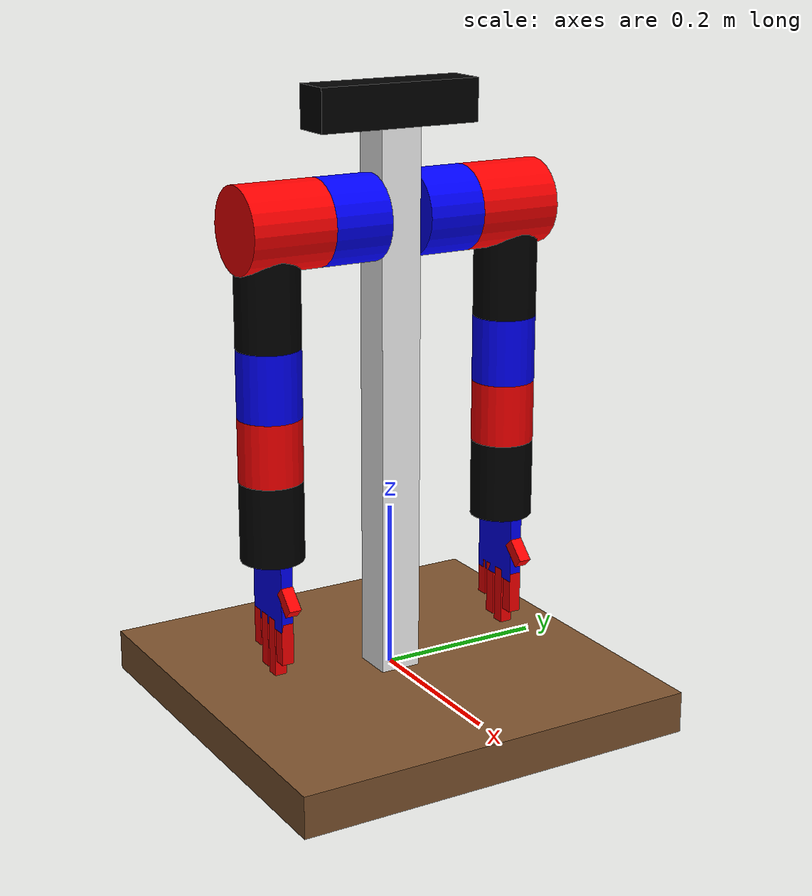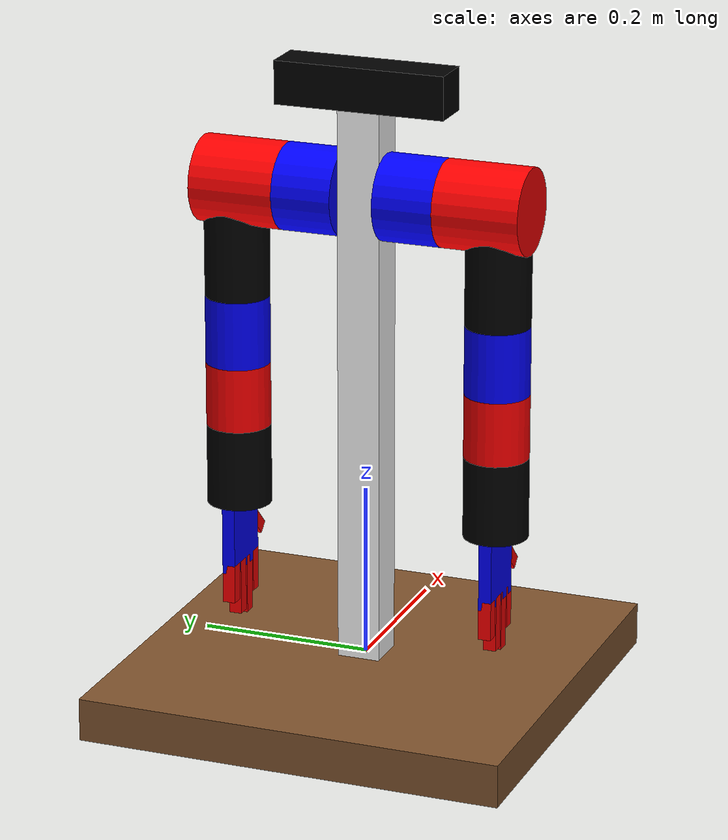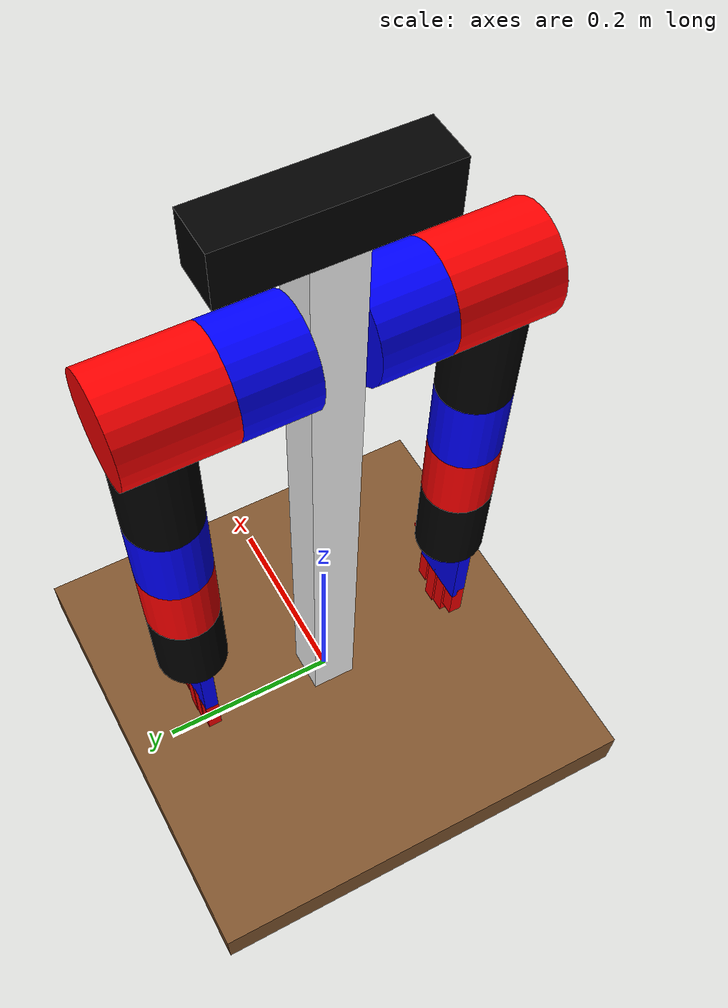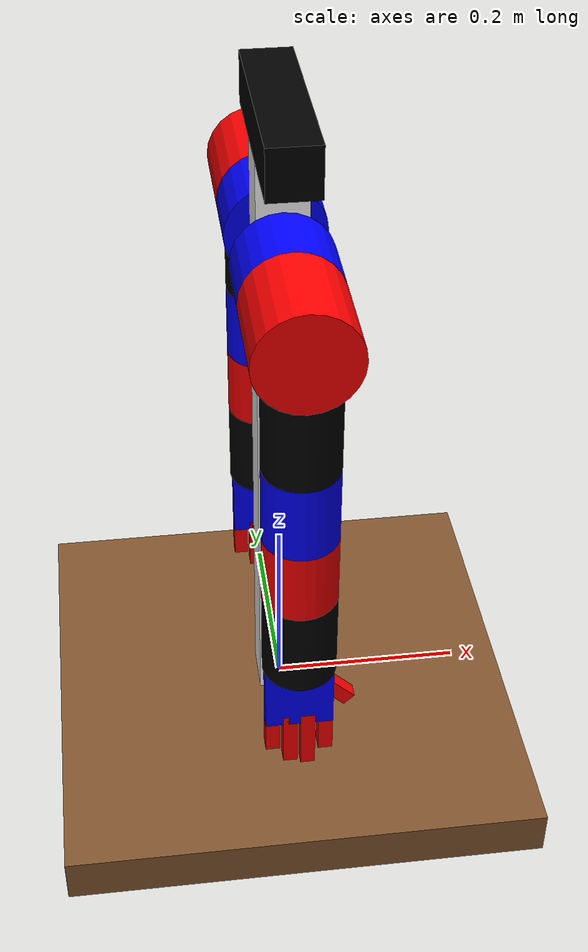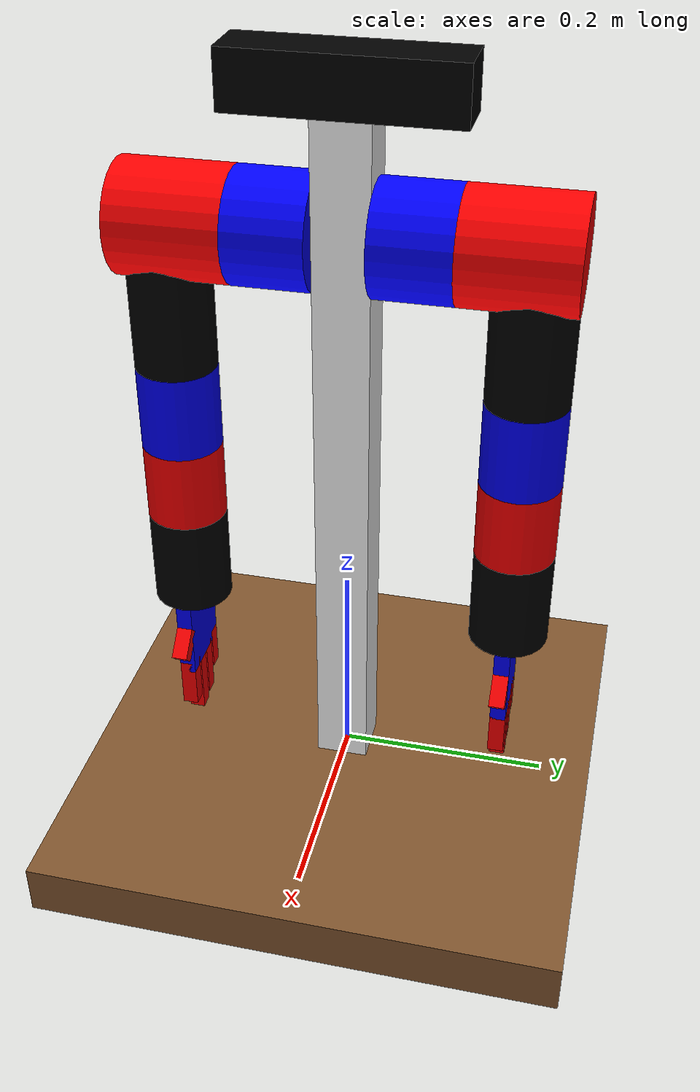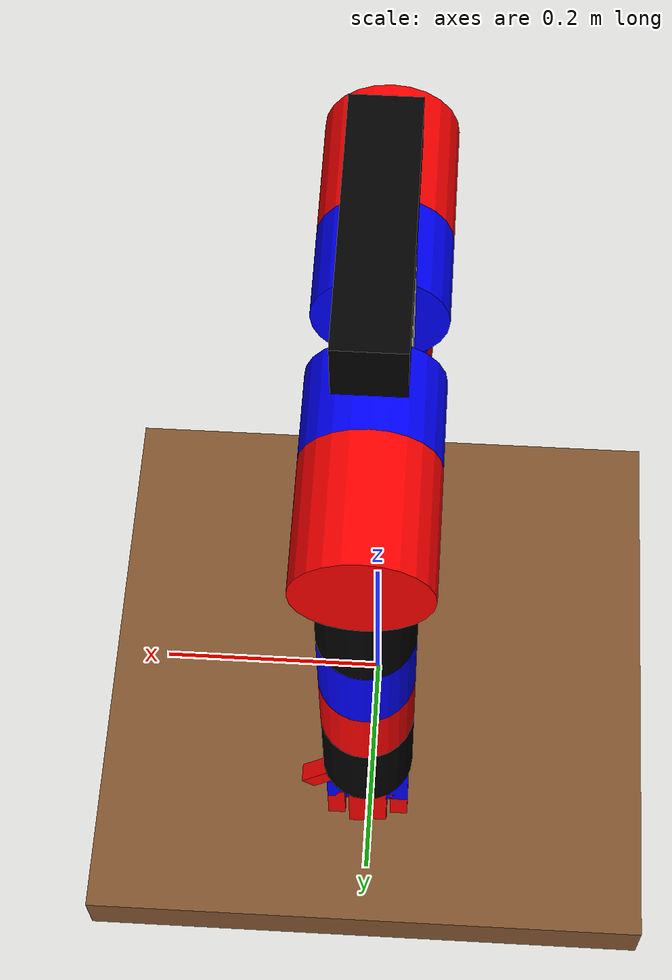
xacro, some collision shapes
<?xml version="1.0"?>
<robot name="doublearm" xmlns:xacro="http://ros.org/wiki/xacro">

    <!-- Defining the colors used in this robot -->
    <material name="Black">
        <color rgba="0 0 0 1"/>
    </material>

    <material name="White">
        <color rgba="1 1 1 1"/>
    </material>

    <material name="Blue">
        <color rgba="0 0 1 1"/>
    </material>

    <material name="Red">
        <color rgba="1 0 0 1"/>
    </material>

    <!-- Constants -->
    <xacro:property name="M_PI" value="3.14159"/>

    <!-- link1 properties -->
    <xacro:property name="link1_width" value="0.05" />
    <xacro:property name="link1_len" value="0.07" />

    <!-- link2 properties -->
    <xacro:property name="link2_width" value="0.05" />
    <xacro:property name="link2_len" value="0.1" />

    <!-- link3 properties -->
    <xacro:property name="link3_width" value="0.0375" />
    <xacro:property name="link3_len" value="0.135" />

    <!-- link4 properties -->
    <xacro:property name="link4_width" value="0.0375" />
    <xacro:property name="link4_len" value="0.08" />

    <!-- link5 properties -->
    <xacro:property name="link5_width" value="0.0375" />
    <xacro:property name="link5_len" value="0.075" />

    <!-- link6 properties -->
    <xacro:property name="link6_width" value="0.0375" />
    <xacro:property name="link6_len" value="0.095" />

    <!-- palm properties -->
    <xacro:property name="palm_len" value="0.07" />
    <xacro:property name="palm_width" value="0.015" />
    <xacro:property name="palm_height" value="0.08" />

    <!-- thumb properties -->
    <xacro:property name="hand_size" value="0.015" />
    <xacro:property name="thumb_height" value="0.03" />

    <!-- index_finger properties -->
    <xacro:property name="index_finger_height" value="0.05" />

    <!-- middle_finger properties -->
    <xacro:property name="middle_finger_height" value="0.07" />

    <!-- third_finger properties -->
    <xacro:property name="third_finger_height" value="0.065" />

    <!-- little_finger properties -->
    <xacro:property name="little_finger_height" value="0.045" />

    <!-- Inertial matrix -->
    <xacro:macro name="inertial_matrix" params="mass">
        <inertial>
            <mass value="${mass}" />
            <inertia ixx="1.0" ixy="0.0" ixz="0.0" iyy="0.5" iyz="0.0" izz="1.0" />
        </inertial>
    </xacro:macro>

    <!-- ///////////////////////////////////////   bottom_joint   ////////////////////////////////////////// -->

    <link name="bottom_link">
        <visual>
              <origin xyz=" 0 0 -0.025"  rpy="0 0 0"/>
                  <geometry>
                       <box size="0.5 0.5 0.05" />
                  </geometry>
              <material name="Brown" />
        </visual>
        <collision>
            <origin xyz=" 0 0 -0.025"  rpy="0 0 0"/>
            <geometry>
                <box size="0.5 0.5 0.05" />
            </geometry>
        </collision>
        <xacro:inertial_matrix mass="500"/>
    </link>
    <joint name="bottom_joint" type="fixed">
        <origin xyz="0 0 0" rpy="0 0 0" />
        <parent link="base_link"/>
        <child link="bottom_link"/>
    </joint>
    <!-- /////////////////////////////////////   BASE LINK    ////////////////////////////////////////////// -->
    <link name="base_link">
        <visual>
            <origin xyz="0 0 0.325" rpy="0 0 0" />
            <geometry>
                <box size="0.05 0.05 0.65" />
            </geometry>
            <material name="White" />
        </visual>
        <collision>
            <origin xyz="0 0 0.325" rpy="0 0 0" />
            <geometry>
                <box size="0.05 0.05 0.65" />
            </geometry>
        </collision>
    </link>
    <joint name="kinetic_camera_joint" type="fixed">
        <parent link="base_link"/>
        <child link="kinetic_camera"/>
        <origin xyz="0 0 0.65" rpy="0 0 0" />
    </joint>

    <!-- /////////////////////////////////////  KINETIC_CAMER  ////////////////////////////////////////////// -->
    <link name="kinetic_camera" >
        <visual>
            <origin xyz="0 0 0.025" rpy="0 0 ${M_PI/2}" />
            <geometry>
                <mesh filename="package://doublearm_description/meshes/kinect.dae"/>
            </geometry>
            <material name="Black" />
        </visual>
        <collision>
            <origin xyz="0 0 0.025" rpy="0 0 0" />
            <geometry>
                <box size="0.05 0.2 0.05"/>
            </geometry>
        </collision>
        <xacro:inertial_matrix mass="1"/>
    </link>

    <joint name="right_joint1" type="fixed">
        <parent link="base_link"/>
        <child link="right_link1"/>
        <origin xyz="0 -0.025 0.55" rpy="0 0 0" />
    </joint>

    <!-- /////////////////////////////////////  RIGHT_LINK1  ////////////////////////////////////////////// -->
    <link name="right_link1" >
        <visual>
            <origin xyz="0 -${link1_len/2} 0" rpy="-${M_PI/2} 0 0" />
            <geometry>
                <cylinder radius="${link1_width}" length="${link1_len}"/>
            </geometry>
            <material name="Blue" />
        </visual>
        <collision>
            <origin xyz="0 -${link1_len/2} 0" rpy="-${M_PI/2} 0 0" />
            <geometry>
                <cylinder radius="${link1_width}" length="${link1_len}"/>
            </geometry>
        </collision>
        <xacro:inertial_matrix mass="1"/>
    </link>
    <joint name="left_joint1" type="fixed">
        <parent link="base_link"/>
        <child link="left_link1"/>
        <origin xyz="0 0.025 0.55" rpy="0 0 0" />
    </joint>

    <!-- /////////////////////////////////////  LEFT_LINK1  ////////////////////////////////////////////// -->
    <link name="left_link1" >
        <visual>
            <origin xyz="0 ${link1_len/2} 0" rpy="${M_PI/2} 0 0" />
            <geometry>
                <cylinder radius="${link1_width}" length="${link1_len}"/>
            </geometry>
            <material name="Blue" />
        </visual>
        <collision>
            <origin xyz="0 ${link1_len/2} 0" rpy="${M_PI/2} 0 0" />
            <geometry>
                <cylinder radius="${link1_width}" length="${link1_len}"/>
            </geometry>
        </collision>
        <xacro:inertial_matrix mass="1"/>
    </link>
    <joint name="right_joint2" type="revolute">
        <parent link="right_link1"/>
        <child link="right_link2"/>
        <origin xyz="0 -${link1_len} 0" rpy="0 0 0" />
        <axis xyz="0 -1 0" />
        <limit effort="300" velocity="1" lower="0" upper="${M_PI/2}"/>
        <dynamics damping="50" friction="1"/>
    </joint>

    <!-- /////////////////////////////////////  RIGHT_LINK2  ////////////////////////////////////////////// -->
    <link name="right_link2" >
        <visual>
            <origin xyz="0 -${link2_len/2} 0" rpy="${M_PI/2} 0 0" />
            <geometry>
                <cylinder radius="${link2_width}" length="${link2_len}"/>
            </geometry>
            <material name="Red" />
        </visual>
        <collision>
            <origin xyz="0 -${link2_len/2} 0" rpy="${M_PI/2} 0 0" />
            <geometry>
                <cylinder radius="${link2_width}" length="${link2_len}"/>
            </geometry>
        </collision>
        <xacro:inertial_matrix mass="1"/>
    </link>
    <joint name="left_joint2" type="revolute">
        <parent link="left_link1"/>
        <child link="left_link2"/>
        <origin xyz="0 ${link1_len} 0" rpy="0 0 0" />
        <axis xyz="0 -1 0" />
        <limit effort="300" velocity="1" lower="0" upper="${M_PI/2}"/>
        <dynamics damping="50" friction="1"/>
    </joint>

    <!-- /////////////////////////////////////  LEFT_LINK2  ////////////////////////////////////////////// -->
    <link name="left_link2" >
        <visual>
            <origin xyz="0 ${link2_len/2} 0" rpy="-${M_PI/2} 0 0" />
            <geometry>
                <cylinder radius="${link2_width}" length="${link2_len}"/>
            </geometry>
            <material name="Red" />
        </visual>
        <collision>
            <origin xyz="0 ${link2_len/2} 0" rpy="-${M_PI/2} 0 0" />
            <geometry>
                <cylinder radius="${link2_width}" length="${link2_len}"/>
            </geometry>
        </collision>
        <xacro:inertial_matrix mass="1"/>
    </link>
    <joint name="right_joint3" type="revolute">
        <parent link="right_link2"/>
        <child link="right_link3"/>
        <origin xyz="0 -${link2_len-0.038} 0" rpy="0 0 0" />
        <axis xyz="-1 0 0" />
        <limit effort="300" velocity="1" lower="-${M_PI/4}" upper="${M_PI/2}"/>
        <dynamics damping="50" friction="1"/>
    </joint>

    <!-- /////////////////////////////////////  RIGHT_LINK3  ////////////////////////////////////////////// -->
    <link name="right_link3" >
        <visual>
            <origin xyz="0 0 -${link3_len/2}" rpy="0 0 0" />
            <geometry>
                <cylinder radius="${link3_width}" length="${link3_len}"/>
            </geometry>
            <material name="Black" />
        </visual>
        <collision>
            <origin xyz="0 0 -${link3_len/2}" rpy="0 0 0" />
            <geometry>
                <cylinder radius="${link3_width}" length="${link3_len}"/>
            </geometry>
        </collision>
        <xacro:inertial_matrix mass="1"/>
    </link>
    <joint name="left_joint3" type="revolute">
        <parent link="left_link2"/>
        <child link="left_link3"/>
        <origin xyz="0 ${link2_len-0.038} 0" rpy="0 0 0" />
        <axis xyz="1 0 0" />
        <limit effort="300" velocity="1" lower="-${M_PI/4}" upper="${M_PI/2}"/>
        <dynamics damping="50" friction="1"/>
    </joint>

    <!-- /////////////////////////////////////  LEFT_LINK3  ////////////////////////////////////////////// -->
    <link name="left_link3" >
        <visual>
            <origin xyz="0 0 -${link3_len/2}" rpy="0 0 0" />
            <geometry>
                <cylinder radius="${link3_width}" length="${link3_len}"/>
            </geometry>
            <material name="Black" />
        </visual>
        <collision>
            <origin xyz="0 0 -${link3_len/2}" rpy="0 0 0" />
            <geometry>
                <cylinder radius="${link3_width}" length="${link3_len}"/>
            </geometry>
        </collision>
        <xacro:inertial_matrix mass="1"/>
    </link>
    <joint name="right_joint4" type="revolute">
        <parent link="right_link3"/>
        <child link="right_link4"/>
        <origin xyz="0 0 -${link3_len}" rpy="0 0 0" />
        <axis xyz="0 0 -1" />
        <limit effort="300" velocity="1" lower="-${M_PI/4}" upper="${M_PI/4}"/>
        <dynamics damping="50" friction="1"/>
    </joint>

    <!-- /////////////////////////////////////  RIGHT_LINK4  ////////////////////////////////////////////// -->
    <link name="right_link4" >
        <visual>
            <origin xyz="0 0 -${link4_len/2}" rpy="0 0 0" />
            <geometry>
                <cylinder radius="${link4_width}" length="${link4_len}"/>
            </geometry>
            <material name="Blue" />
        </visual>
        <collision>
            <origin xyz="0 0 -${link4_len/2}" rpy="0 0 0" />
            <geometry>
                <cylinder radius="${link4_width}" length="${link4_len}"/>
            </geometry>
        </collision>
        <xacro:inertial_matrix mass="1"/>
    </link>
    <joint name="left_joint4" type="revolute">
        <parent link="left_link3"/>
        <child link="left_link4"/>
        <origin xyz="0 0 -${link3_len}" rpy="0 0 0" />
        <axis xyz="0 0 1" />
        <limit effort="300" velocity="1" lower="-${M_PI/4}" upper="${M_PI/4}"/>
        <dynamics damping="50" friction="1"/>
    </joint>

    <!-- /////////////////////////////////////  LEFT_LINK4  ////////////////////////////////////////////// -->
    <link name="left_link4" >
        <visual>
            <origin xyz="0 0 -${link4_len/2}" rpy="0 0 0" />
            <geometry>
                <cylinder radius="${link4_width}" length="${link4_len}"/>
            </geometry>
            <material name="Blue" />
        </visual>
        <collision>
            <origin xyz="0 0 -${link4_len/2}" rpy="0 0 0" />
            <geometry>
                <cylinder radius="${link4_width}" length="${link4_len}"/>
            </geometry>
        </collision>
        <xacro:inertial_matrix mass="1"/>
    </link>
    <joint name="right_joint5" type="revolute">
        <parent link="right_link4"/>
        <child link="right_link5"/>
        <origin xyz="0 0 -${link4_len}" rpy="0 0 0" />
        <axis xyz="1 0 0" />
        <limit effort="300" velocity="1" lower="0" upper="${M_PI*3/4}"/>
        <dynamics damping="50" friction="1"/>
    </joint>

    <!-- /////////////////////////////////////  RIGHT_LINK5  ////////////////////////////////////////////// -->
    <link name="right_link5" >
        <visual>
            <origin xyz="0 0 -${link5_len/2}" rpy="0 0 0" />
            <geometry>
                <cylinder radius="${link5_width}" length="${link5_len}"/>
            </geometry>
            <material name="Red" />
        </visual>
        <collision>
            <origin xyz="0 0 -${link5_len/2}" rpy="0 0 0" />
            <geometry>
                <cylinder radius="${link5_width}" length="${link5_len}"/>
            </geometry>
        </collision>
        <xacro:inertial_matrix mass="1"/>
    </link>
    <joint name="left_joint5" type="revolute">
        <parent link="left_link4"/>
        <child link="left_link5"/>
        <origin xyz="0 0 -${link4_len}" rpy="0 0 0" />
        <axis xyz="-1 0 0" />
        <limit effort="300" velocity="1" lower="0" upper="${M_PI*3/4}"/>
        <dynamics damping="50" friction="1"/>
    </joint>

    <!-- /////////////////////////////////////  LEFT_LINK5  ////////////////////////////////////////////// -->
    <link name="left_link5" >
        <visual>
            <origin xyz="0 0 -${link5_len/2}" rpy="0 0 0" />
            <geometry>
                <cylinder radius="${link5_width}" length="${link5_len}"/>
            </geometry>
            <material name="Red" />
        </visual>
        <collision>
            <origin xyz="0 0 -${link5_len/2}" rpy="0 0 0" />
            <geometry>
                <cylinder radius="${link5_width}" length="${link5_len}"/>
            </geometry>
        </collision>
        <xacro:inertial_matrix mass="1"/>
    </link>
    <joint name="right_joint6" type="revolute">
        <parent link="right_link5"/>
        <child link="right_link6"/>
        <origin xyz="0 0 -${link5_len}" rpy="0 0 0" />
        <axis xyz="0 0 -1" />
        <limit effort="300" velocity="1" lower="-${M_PI/4}" upper="${M_PI/4}"/>
        <dynamics damping="50" friction="1"/>
    </joint>

    <!-- /////////////////////////////////////  RIGHT_LINK6  ////////////////////////////////////////////// -->
    <link name="right_link6" >
        <visual>
            <origin xyz="0 0 -${link6_len/2}" rpy="0 0 0" />
            <geometry>
                <cylinder radius="${link6_width}" length="${link6_len}"/>
            </geometry>
            <material name="Black" />
        </visual>
        <collision>
            <origin xyz="0 0 -${link6_len/2}" rpy="0 0 0" />
            <geometry>
                <cylinder radius="${link6_width}" length="${link6_len}"/>
            </geometry>
        </collision>
        <xacro:inertial_matrix mass="1"/>
    </link>
    <joint name="left_joint6" type="revolute">
        <parent link="left_link5"/>
        <child link="left_link6"/>
        <origin xyz="0 0 -${link5_len}" rpy="0 0 0" />
        <axis xyz="0 0 1" />
        <limit effort="300" velocity="1" lower="-${M_PI/4}" upper="${M_PI/4}"/>
        <dynamics damping="50" friction="1"/>
    </joint>

    <!-- /////////////////////////////////////  LEFT_LINK6  ////////////////////////////////////////////// -->
    <link name="left_link6" >
        <visual>
            <origin xyz="0 0 -${link6_len/2}" rpy="0 0 0" />
            <geometry>
                <cylinder radius="${link6_width}" length="${link6_len}"/>
            </geometry>
            <material name="Black" />
        </visual>
        <collision>
            <origin xyz="0 0 -${link6_len/2}" rpy="0 0 0" />
            <geometry>
                <cylinder radius="${link6_width}" length="${link6_len}"/>
            </geometry>
        </collision>
        <xacro:inertial_matrix mass="1"/>
    </link>
    <joint name="left_palm_joint" type="revolute">
        <parent link="left_link6"/>
        <child link="left_palm"/>
        <origin xyz="0 0 -${link6_len}" rpy="0 0 0" />
        <axis xyz="-1 0 0" />
        <limit effort="300" velocity="1" lower="0" upper="${M_PI/3}"/>
        <dynamics damping="50" friction="1"/>
    </joint>

    <!-- /////////////////////////////////////  LEFT_PALM  ////////////////////////////////////////////// -->
    <link name="left_palm" >
        <visual>
            <origin xyz="0 0 -${palm_height/2}" rpy="0 0 0" />
            <geometry>
                <box size="${palm_len} ${palm_width} ${palm_height}"/>
            </geometry>
            <material name="Blue" />
        </visual>
        <collision>
            <origin xyz="0 0 -${palm_height/2}" rpy="0 0 0" />
            <geometry>
                <box size="${palm_len} ${palm_width} ${palm_height}"/>
            </geometry>
        </collision>
        <xacro:inertial_matrix mass="1"/>
    </link>
    <joint name="right_palm_joint" type="revolute">
        <parent link="right_link6"/>
        <child link="right_palm"/>
        <origin xyz="0 0 -${link6_len}" rpy="0 0 0" />
        <axis xyz="1 0 0" />
        <limit effort="300" velocity="1" lower="0" upper="${M_PI/3}"/>
        <dynamics damping="50" friction="1"/>
    </joint>

    <!-- /////////////////////////////////////  RIGHT_PALM  ////////////////////////////////////////////// -->
    <link name="right_palm" >
        <visual>
            <origin xyz="0 0 -${palm_height/2}" rpy="0 0 0" />
            <geometry>
                <box size="${palm_len} ${palm_width} ${palm_height}"/>
            </geometry>
            <material name="Blue" />
        </visual>
        <collision>
            <origin xyz="0 0 -${palm_height/2}" rpy="0 0 0" />
            <geometry>
                <box size="${palm_len} ${palm_width} ${palm_height}"/>
            </geometry>
        </collision>
        <xacro:inertial_matrix mass="1"/>
    </link>
    <joint name="left_thumb_joint" type="revolute">
        <parent link="left_palm"/>
        <child link="left_thumb"/>
        <origin xyz="${palm_len/2-0.005} 0 -${palm_height-0.05}" rpy="0 -${M_PI/4} 0" />
        <axis xyz="-1 0 0" />
        <limit effort="300" velocity="1" lower="0" upper="${M_PI/2}"/>
        <dynamics damping="50" friction="1"/>
    </joint>

    <!-- /////////////////////////////////////  LEFT_THUMB  ////////////////////////////////////////////// -->
    <link name="left_thumb" >
        <visual>
            <origin xyz="0 0 -${thumb_height/2}" rpy="0 0 0" />
            <geometry>
                <box size="${hand_size} ${hand_size} ${thumb_height}"/>
            </geometry>
            <material name="Red" />
        </visual>
        <collision>
            <origin xyz="0 0 -${thumb_height/2}" rpy="0 0 0" />
            <geometry>
                <box size="${hand_size} ${hand_size} ${thumb_height}"/>
            </geometry>
        </collision>
        <xacro:inertial_matrix mass="1"/>
    </link>
    <joint name="right_thumb_joint" type="revolute">
        <parent link="right_palm"/>
        <child link="right_thumb"/>
        <origin xyz="${palm_len/2-0.005} 0 -${palm_height-0.05}" rpy="0 -${M_PI/4} 0" />
        <axis xyz="1 0 0" />
        <limit effort="300" velocity="1" lower="0" upper="${M_PI/2}"/>
        <dynamics damping="50" friction="1"/>
    </joint>

    <!-- /////////////////////////////////////  RIGHT_THUMB  ////////////////////////////////////////////// -->
    <link name="right_thumb" >
        <visual>
            <origin xyz="0 0 -${thumb_height/2}" rpy="0 0 0" />
            <geometry>
                <box size="${hand_size} ${hand_size} ${thumb_height}"/>
            </geometry>
            <material name="Red" />
        </visual>
        <collision>
            <origin xyz="0 0 -${thumb_height/2}" rpy="0 0 0" />
            <geometry>
                <box size="${hand_size} ${hand_size} ${thumb_height}"/>
            </geometry>
        </collision>
        <xacro:inertial_matrix mass="1"/>
    </link>
    <joint name="left_index_finger_joint" type="revolute">
        <parent link="left_palm"/>
        <child link="left_index_finger"/>
        <origin xyz="${palm_len/2-0.0075} 0 -${palm_height-0.01}" rpy="0 0 0" />
        <axis xyz="-1 0 0" />
        <limit effort="300" velocity="1" lower="0" upper="${M_PI/2}"/>
        <dynamics damping="50" friction="1"/>
    </joint>

    <!-- /////////////////////////////////////  LEFT_INDEX_FINGER  ////////////////////////////////////////////// -->
    <link name="left_index_finger" >
        <visual>
            <origin xyz="0 0 -${index_finger_height/2}" rpy="0 0 0" />
            <geometry>
                <box size="${hand_size} ${hand_size} ${index_finger_height}"/>
            </geometry>
            <material name="Red" />
        </visual>
        <collision>
            <origin xyz="0 0 -${index_finger_height/2}" rpy="0 0 0" />
            <geometry>
                <box size="${hand_size} ${hand_size} ${index_finger_height}"/>
            </geometry>
        </collision>
        <xacro:inertial_matrix mass="1"/>
    </link>
    <joint name="right_index_finger_joint" type="revolute">
        <parent link="right_palm"/>
        <child link="right_index_finger"/>
        <origin xyz="${palm_len/2-0.0075} 0 -${palm_height-0.01}" rpy="0 0 0" />
        <axis xyz="1 0 0" />
        <limit effort="300" velocity="1" lower="0" upper="${M_PI/2}"/>
        <dynamics damping="50" friction="1"/>
    </joint>

    <!-- /////////////////////////////////////  RIGHT_INDEX_FINGER  ////////////////////////////////////////////// -->
    <link name="right_index_finger" >
        <visual>
            <origin xyz="0 0 -${index_finger_height/2}" rpy="0 0 0" />
            <geometry>
                <box size="${hand_size} ${hand_size} ${index_finger_height}"/>
            </geometry>
            <material name="Red" />
        </visual>
        <collision>
            <origin xyz="0 0 -${index_finger_height/2}" rpy="0 0 0" />
            <geometry>
                <box size="${hand_size} ${hand_size} ${index_finger_height}"/>
            </geometry>
        </collision>
        <xacro:inertial_matrix mass="1"/>
    </link>
    <joint name="left_middle_finger_joint" type="revolute">
        <parent link="left_palm"/>
        <child link="left_middle_finger"/>
        <origin xyz="${palm_len/2-0.0258} 0 -${palm_height-0.01}" rpy="0 0 0" />
        <axis xyz="-1 0 0" />
        <limit effort="300" velocity="1" lower="0" upper="${M_PI/2}"/>
        <dynamics damping="50" friction="1"/>
    </joint>

    <!-- /////////////////////////////////////  LEFT_MIDDLE_FINGER  ////////////////////////////////////////////// -->
    <link name="left_middle_finger" >
        <visual>
            <origin xyz="0 0 -${middle_finger_height/2}" rpy="0 0 0" />
            <geometry>
                <box size="${hand_size} ${hand_size} ${middle_finger_height}"/>
            </geometry>
            <material name="Red" />
        </visual>
        <collision>
            <origin xyz="0 0 -${middle_finger_height/2}" rpy="0 0 0" />
            <geometry>
                <box size="${hand_size} ${hand_size} ${middle_finger_height}"/>
            </geometry>
        </collision>
        <xacro:inertial_matrix mass="1"/>
    </link>
    <joint name="right_middle_finger_joint" type="revolute">
        <parent link="right_palm"/>
        <child link="right_middle_finger"/>
        <origin xyz="${palm_len/2-0.0258} 0 -${palm_height-0.01}" rpy="0 0 0" />
        <axis xyz="1 0 0" />
        <limit effort="300" velocity="1" lower="0" upper="${M_PI/2}"/>
        <dynamics damping="50" friction="1"/>
    </joint>

    <!-- /////////////////////////////////////  RIGHT_MIDDLE_FINGER  ////////////////////////////////////////////// -->
    <link name="right_middle_finger" >
        <visual>
            <origin xyz="0 0 -${middle_finger_height/2}" rpy="0 0 0" />
            <geometry>
                <box size="${hand_size} ${hand_size} ${middle_finger_height}"/>
            </geometry>
            <material name="Red" />
        </visual>
        <collision>
            <origin xyz="0 0 -${middle_finger_height/2}" rpy="0 0 0" />
            <geometry>
                <box size="${hand_size} ${hand_size} ${middle_finger_height}"/>
            </geometry>
        </collision>
        <xacro:inertial_matrix mass="1"/>
    </link>
    <joint name="left_third_finger_joint" type="revolute">
        <parent link="left_palm"/>
        <child link="left_third_finger"/>
        <origin xyz="${palm_len/2-0.0441} 0 -${palm_height-0.01}" rpy="0 0 0" />
        <axis xyz="-1 0 0" />
        <limit effort="300" velocity="1" lower="0" upper="${M_PI/2}"/>
        <dynamics damping="50" friction="1"/>
    </joint>

    <!-- /////////////////////////////////////  LEFT_THIRD_FINGER  ////////////////////////////////////////////// -->
    <link name="left_third_finger" >
        <visual>
            <origin xyz="0 0 -${third_finger_height/2}" rpy="0 0 0" />
            <geometry>
                <box size="${hand_size} ${hand_size} ${third_finger_height}"/>
            </geometry>
            <material name="Red" />
        </visual>
        <collision>
            <origin xyz="0 0 -${third_finger_height/2}" rpy="0 0 0" />
            <geometry>
                <box size="${hand_size} ${hand_size} ${third_finger_height}"/>
            </geometry>
        </collision>
        <xacro:inertial_matrix mass="1"/>
    </link>
    <joint name="right_third_finger_joint" type="revolute">
        <parent link="right_palm"/>
        <child link="right_third_finger"/>
        <origin xyz="${palm_len/2-0.0441} 0 -${palm_height-0.01}" rpy="0 0 0" />
        <axis xyz="1 0 0" />
        <limit effort="300" velocity="1" lower="0" upper="${M_PI/2}"/>
        <dynamics damping="50" friction="1"/>
    </joint>

    <!-- /////////////////////////////////////  RIGHT_THIRD_FINGER  ////////////////////////////////////////////// -->
    <link name="right_third_finger" >
        <visual>
            <origin xyz="0 0 -${third_finger_height/2}" rpy="0 0 0" />
            <geometry>
                <box size="${hand_size} ${hand_size} ${third_finger_height}"/>
            </geometry>
            <material name="Red" />
        </visual>
        <collision>
            <origin xyz="0 0 -${third_finger_height/2}" rpy="0 0 0" />
            <geometry>
                <box size="${hand_size} ${hand_size} ${third_finger_height}"/>
            </geometry>
        </collision>
        <xacro:inertial_matrix mass="1"/>
    </link>
    <joint name="left_little_finger_joint" type="revolute">
        <parent link="left_palm"/>
        <child link="left_little_finger"/>
        <origin xyz="-${palm_len/2-0.0075} 0 -${palm_height-0.01}" rpy="0 0 0" />
        <axis xyz="-1 0 0" />
        <limit effort="300" velocity="1" lower="0" upper="${M_PI/2}"/>
        <dynamics damping="50" friction="1"/>
    </joint>

    <!-- /////////////////////////////////////  LEFT_LITTLE_FINGER  ////////////////////////////////////////////// -->
    <link name="left_little_finger" >
        <visual>
            <origin xyz="0 0 -${little_finger_height/2}" rpy="0 0 0" />
            <geometry>
                <box size="${hand_size} ${hand_size} ${little_finger_height}"/>
            </geometry>
            <material name="Red" />
        </visual>
        <collision>
            <origin xyz="0 0 -${little_finger_height/2}" rpy="0 0 0" />
            <geometry>
                <box size="${hand_size} ${hand_size} ${little_finger_height}"/>
            </geometry>
        </collision>
        <xacro:inertial_matrix mass="1"/>
    </link>
    <joint name="right_little_finger_joint" type="revolute">
        <parent link="right_palm"/>
        <child link="right_little_finger"/>
        <origin xyz="-${palm_len/2-0.0075} 0 -${palm_height-0.01}" rpy="0 0 0" />
        <axis xyz="1 0 0" />
        <limit effort="300" velocity="1" lower="0" upper="${M_PI/2}"/>
        <dynamics damping="50" friction="1"/>
    </joint>

    <!-- /////////////////////////////////////  RIGHT_LITTLE_FINGER  ////////////////////////////////////////////// -->
    <link name="right_little_finger" >
        <visual>
            <origin xyz="0 0 -${little_finger_height/2}" rpy="0 0 0" />
            <geometry>
                <box size="${hand_size} ${hand_size} ${little_finger_height}"/>
            </geometry>
            <material name="Red" />
        </visual>
        <collision>
            <origin xyz="0 0 -${little_finger_height/2}" rpy="0 0 0" />
            <geometry>
                <box size="${hand_size} ${hand_size} ${little_finger_height}"/>
            </geometry>
        </collision>
        <xacro:inertial_matrix mass="1"/>
    </link>

    <!-- /////////////////////////////////   Gazebo   ////////////////////////////////////// -->
    <gazebo reference="bottom_link">
        <material>Gazebo/Black</material>
    </gazebo>
    <gazebo reference="base_link">
        <material>Gazebo/White</material>
    </gazebo>
    <gazebo reference="kinetic_camera">
        <material>Gazebo/Black</material>
    </gazebo>
    <gazebo reference="left_link1">
        <material>Gazebo/Blue</material>
    </gazebo>
    <gazebo reference="left_link2">
        <material>Gazebo/White</material>
    </gazebo>
    <gazebo reference="left_link3">
        <material>Gazebo/Blue</material>
    </gazebo>
    <gazebo reference="left_link4">
        <material>Gazebo/Black</material>
    </gazebo>
    <gazebo reference="left_link5">
        <material>Gazebo/White</material>
    </gazebo>
    <gazebo reference="left_link6">
        <material>Gazebo/Blue</material>
    </gazebo>
    <gazebo reference="left_palm">
        <material>Gazebo/Black</material>
    </gazebo>
    <gazebo reference="left_thumb">
        <material>Gazebo/Red</material>
    </gazebo>
    <gazebo reference="left_index_finger">
        <material>Gazebo/Red</material>
    </gazebo>
    <gazebo reference="left_middle_finger">
        <material>Gazebo/Red</material>
    </gazebo>
    <gazebo reference="left_third_finger">
        <material>Gazebo/Red</material>
    </gazebo>
    <gazebo reference="left_little_finger">
        <material>Gazebo/Red</material>
    </gazebo>
    <gazebo reference="right_link1">
        <material>Gazebo/Blue</material>
    </gazebo>
    <gazebo reference="right_link2">
        <material>Gazebo/White</material>
    </gazebo>
    <gazebo reference="right_link3">
        <material>Gazebo/Blue</material>
    </gazebo>
    <gazebo reference="right_link4">
        <material>Gazebo/Black</material>
    </gazebo>
    <gazebo reference="right_link5">
        <material>Gazebo/White</material>
    </gazebo>
    <gazebo reference="right_link6">
        <material>Gazebo/Blue</material>
    </gazebo>
    <gazebo reference="right_palm">
        <material>Gazebo/Black</material>
    </gazebo>
    <gazebo reference="right_thumb">
        <material>Gazebo/Red</material>
    </gazebo>
    <gazebo reference="right_index_finger">
        <material>Gazebo/Red</material>
    </gazebo>
    <gazebo reference="right_middle_finger">
        <material>Gazebo/Red</material>
    </gazebo>
    <gazebo reference="right_third_finger">
        <material>Gazebo/Red</material>
    </gazebo>
    <gazebo reference="right_little_finger">
        <material>Gazebo/Red</material>
    </gazebo>

    <gazebo reference="kinetic_camera">
            <sensor type="camera" name="camera_node">
                <update_rate>30.0</update_rate>
                <camera name="head">
                    <horizontal_fov>1.3962634</horizontal_fov>
                    <image>
                        <width>1280</width>
                        <height>720</height>
                        <format>R8G8B8</format>
                    </image>
                    <clip>
                        <near>0.02</near>
                        <far>300</far>
                    </clip>
                    <noise>
                        <type>gaussian</type>
                        <mean>0.0</mean>
                        <stddev>0.007</stddev>
                    </noise>
                </camera>
                <plugin name="gazebo_camera" filename="libgazebo_ros_camera.so">
                    <alwaysOn>true</alwaysOn>
                    <updateRate>0.0</updateRate>
                    <cameraName>/camera</cameraName>
                    <imageTopicName>image_raw</imageTopicName>
                    <cameraInfoTopicName>camera_info</cameraInfoTopicName>
                    <frameName>camera_link</frameName>
                    <hackBaseline>0.07</hackBaseline>
                    <distortionK1>0.0</distortionK1>
                    <distortionK2>0.0</distortionK2>
                    <distortionK3>0.0</distortionK3>
                    <distortionT1>0.0</distortionT1>
                    <distortionT2>0.0</distortionT2>
                </plugin>
            </sensor>
        </gazebo>
    <!-- Transmissions for ROS Control -->
    <xacro:macro name="transmission_block" params="joint_name">
        <transmission name="tran1">
            <type>transmission_interface/SimpleTransmission</type>
            <joint name="${joint_name}">
                <hardwareInterface>hardware_interface/PositionJointInterface</hardwareInterface>
            </joint>
            <actuator name="motor1">
                <hardwareInterface>hardware_interface/PositionJointInterface</hardwareInterface>
                <mechanicalReduction>1</mechanicalReduction>
            </actuator>
        </transmission>
    </xacro:macro>

    <xacro:transmission_block joint_name="left_joint2"/>
    <xacro:transmission_block joint_name="left_joint3"/>
    <xacro:transmission_block joint_name="left_joint4"/>
    <xacro:transmission_block joint_name="left_joint5"/>
    <xacro:transmission_block joint_name="left_joint6"/>
    <xacro:transmission_block joint_name="left_palm_joint"/>
    <xacro:transmission_block joint_name="left_thumb_joint"/>
    <xacro:transmission_block joint_name="left_index_finger_joint"/>
    <xacro:transmission_block joint_name="left_middle_finger_joint"/>
    <xacro:transmission_block joint_name="left_third_finger_joint"/>
    <xacro:transmission_block joint_name="left_little_finger_joint"/>
    <xacro:transmission_block joint_name="right_joint2"/>
    <xacro:transmission_block joint_name="right_joint3"/>
    <xacro:transmission_block joint_name="right_joint4"/>
    <xacro:transmission_block joint_name="right_joint5"/>
    <xacro:transmission_block joint_name="right_joint6"/>
    <xacro:transmission_block joint_name="right_palm_joint"/>
    <xacro:transmission_block joint_name="right_thumb_joint"/>
    <xacro:transmission_block joint_name="right_index_finger_joint"/>
    <xacro:transmission_block joint_name="right_middle_finger_joint"/>
    <xacro:transmission_block joint_name="right_third_finger_joint"/>
    <xacro:transmission_block joint_name="right_little_finger_joint"/>

    <!-- ros_control plugin -->
    <gazebo>
        <plugin name="gazebo_ros_control" filename="libgazebo_ros_control.so">
            <robotNamespace>/doublearm</robotNamespace>
        </plugin>
    </gazebo>
</robot>
